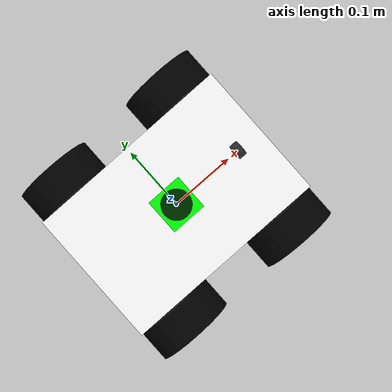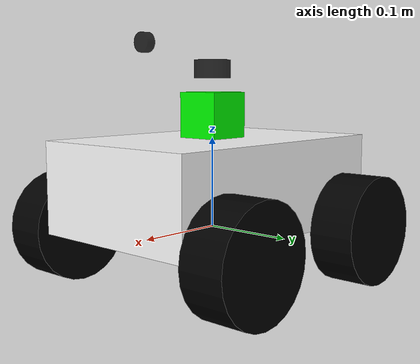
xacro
<?xml version="1.0"?>

<robot name="robot" xmlns:xacro="http://www.ros.org/wiki/xacro">

    <xacro:property name="length_wheel" value="0.05" />
    <xacro:property name="radius_wheel" value="0.06" />
    <xacro:property name="PI" value="3.1415926"/>
    <xacro:macro name="default_inertial" params="mass">
        <inertial>
            <mass value="${mass}" />
            <inertia ixx="0.01" ixy="0.0" ixz="0.0"
                    iyy="0.01" iyz="0.0" izz="0.01" />
        </inertial>
    </xacro:macro>

    <link name="base_link">
        <visual>
            <geometry>
                <box size="0.2 .3 .1"/>
            </geometry>
            <origin rpy="0 0 ${PI/2}" xyz="0 0 0.05"/>
            <material name="white">
                <color rgba="1 1 1 1"/>
            </material>
        </visual>
        <collision>
            <geometry>
                <box size="0.2 .3 0.1"/>
            </geometry>
        </collision>
        <xacro:default_inertial mass="2.2"/>
    </link>

    <link name="wheel_1">
        <visual>
            <geometry>
                <cylinder length="${length_wheel}" radius="${radius_wheel}"/>
            </geometry>
            <origin rpy="0 0 0" xyz="0 0 0"/>
            <material name="black">
                <color rgba="0 0 0 1"/>
            </material>
        </visual>
        <collision>
            <geometry>
                <cylinder length="${length_wheel}" radius="${radius_wheel}"/>
            </geometry>
        </collision>
        <mu1>0.5</mu1>
        <mu2>0.5</mu2>
        <xacro:default_inertial mass="0.5"/>
    </link>

    <link name="wheel_2">
        <visual>
            <geometry>
                <cylinder length="${length_wheel}" radius="${radius_wheel}"/>
            </geometry>
            <origin rpy="0 0 0" xyz="0 0 0"/>
            <material name="black"/>
        </visual>
        <collision>
            <geometry>
                <cylinder length="${length_wheel}" radius="${radius_wheel}"/>
            </geometry>
        </collision>
        <mu1>0.5</mu1>
        <mu2>0.5</mu2>
        <xacro:default_inertial mass="0.5"/>
    </link>

    <link name="wheel_3">
        <visual>
            <geometry>
                <cylinder length="${length_wheel}" radius="${radius_wheel}"/>
            </geometry>
            <origin rpy="0 0 0" xyz="0 0 0"/>
            <material name="black"/>
        </visual>
        <collision>
            <geometry>
                <cylinder length="${length_wheel}" radius="${radius_wheel}"/>
            </geometry>
        </collision>
        <mu1>0.5</mu1>
        <mu2>0.5</mu2>
        <xacro:default_inertial mass="0.5"/>
    </link>

    <link name="wheel_4">
        <visual>
            <geometry>
                <cylinder length="${length_wheel}" radius="${radius_wheel}"/>
            </geometry>
            <origin rpy="0 0 0" xyz="0 0 0" />
            <material name="black"/>
        </visual>
        <collision>
            <geometry>
                <cylinder length="${length_wheel}" radius="${radius_wheel}"/>
            </geometry>
        </collision>
        <mu1>0.5</mu1>
        <mu2>0.5</mu2>
        <xacro:default_inertial mass="0.5"/>
    </link>

    <joint name="base_to_wheel1" type="continuous">
        <parent link="base_link"/>
        <child link="wheel_1"/>
        <origin rpy="${-PI/2} 0 0" xyz="0.1 0.13 0"/>
        <axis xyz="0 0 1" />
    </joint>

    <joint name="base_to_wheel2" type="continuous">
        <axis xyz="0 0 1" />
        <anchor xyz="0 0 0" />
        <limit effort="100" velocity="100" />
        <parent link="base_link"/>
        <child link="wheel_2"/>
        <origin rpy="${-PI/2} 0 0" xyz="-0.1 0.13 0"/>
    </joint>

    <joint name="base_to_wheel3" type="continuous">
        <parent link="base_link"/>
        <axis xyz="0 0 1" />
        <child link="wheel_3"/>
        <origin rpy="${-PI/2} 0 0" xyz="0.1 -0.13 0"/>
    </joint>

    <joint name="base_to_wheel4" type="continuous">
        <parent link="base_link"/>
        <axis xyz="0 0 1" />
        <child link="wheel_4"/>
        <origin rpy="${-PI/2} 0 0" xyz="-0.1 -0.13 0"/>
    </joint>

    <!-- IMU joint -->
    <joint name="imu_joint" type="fixed">
        <axis xyz="0 1 0" />
        <origin xyz="0 0 0.125" rpy="0 0 0"/>
        <parent link="base_link"/>
        <child link="imu_link"/>
    </joint>

    <!-- IMU -->
    <link name="imu_link">
        <collision>
            <origin xyz="0 0 0" rpy="0 0 0"/>
            <geometry>
                <box size="0.05 0.05 0.05"/>
            </geometry>
        </collision>

        <visual>
            <origin xyz="0 0 0" rpy="0 0 0"/>
            <geometry>
                <box size="0.05 0.05 0.05"/>
            </geometry>
            <material name="green">
                <color rgba="0 1 0 1"/>
            </material>
        </visual>

        <inertial>
            <mass value="1e-2" />
            <origin xyz="0 0 0" rpy="0 0 0"/>
            <inertia ixx="1e-6" ixy="0" ixz="0" iyy="1e-6" iyz="0" izz="1e-6" />
        </inertial>
    </link>

    <link name="base_footprint"/>
    <joint name="base_joint" type="fixed">
        <parent link="base_footprint"/>
        <child link="base_link"/>
        <origin xyz="0.0 0.0 0" rpy="0 0 0"/>
    </joint>

    <!-- gazebo插件设置相关 -->

    <gazebo reference="base_link">
        <material>Gazebo/Orange</material>
    </gazebo>

    <gazebo reference="wheel_1">
        <material>Gazebo/Red</material>
    </gazebo>

    <gazebo reference="wheel_2">
        <material>Gazebo/Black</material>
    </gazebo>

    <gazebo reference="wheel_3">
        <material>Gazebo/Red</material>
    </gazebo>

    <gazebo reference="wheel_4">
        <material>Gazebo/Black</material>
    </gazebo>

    <!-- Drive controller -->
    <gazebo>
        <plugin name="mecanum_controller" filename="libgazebo_ros_planar_move.so">
            <ros>
                <remapping>cmd_vel:=cmd_vel</remapping>
                <remapping>odom:=odom</remapping>
            </ros>

            <update_rate>100</update_rate>
            <publish_rate>100</publish_rate>

            <!-- 发布odom -->
            <robotBaseFrame>base_footprint</robotBaseFrame>
            <publish_odom>true</publish_odom>
            <publish_odom_tf>true</publish_odom_tf>

            <leftFrontJoint>base_to_wheel1</leftFrontJoint>
            <rightFrontJoint>base_to_wheel3</rightFrontJoint>
            <leftRearJoint>base_to_wheel2</leftRearJoint>
            <rightRearJoint>base_to_wheel4</rightRearJoint>
            <wheelSeparation>0.26</wheelSeparation>
            <wheelDiameter>0.12</wheelDiameter>
        </plugin>
    </gazebo>

    <!-- imu控制 -->
    <gazebo reference="imu_link">
        <material>Gazebo/Orange</material>
        <gravity>true</gravity>
        <sensor name="imu_sensor" type="imu">
            <always_on>true</always_on>
            <update_rate>100</update_rate>
            <visualize>true</visualize>
            <topic>__default_topic__</topic>
            <plugin filename="libgazebo_ros_imu_sensor.so" name="imu_plugin">
                <topicName>/imu</topicName>
                <bodyName>imu_link</bodyName>
                <updateRateHZ>100.0</updateRateHZ>
                <gaussianNoise>0.0</gaussianNoise>
                <xyzOffset>0 0 0</xyzOffset>
                <rpyOffset>0 0 0</rpyOffset>
                <frameName>imu_link</frameName>
                <serviceName>default_service</serviceName>
                <alwaysOn>true</alwaysOn>
                <maxAngularVelocity>100.0</maxAngularVelocity>
                <noiseDensity>0.0</noiseDensity>
                <randomWalk>0.0</randomWalk>
            </plugin>
        </sensor>
    </gazebo>

    <!-- Livox-Mid360  -->

    <!-- Livox-Avia -->

    <!-- Livox-Avia -->
    <joint name="laser_joint" type="fixed">
        <parent link="base_link" />
        <child link="laser_link" />
        <origin xyz="0 0 0.175" />
    </joint>
    <link name="laser_link">
      <visual>
        <origin xyz="0 0 0" rpy="0 0 0"/>
        <geometry>
            <cylinder length="0.02" radius="0.02"/>
        </geometry>
        <material name="black">
            <color rgba="0.0 0.0 0.0 0.8" />
        </material>
      </visual>
    </link>
    <gazebo reference="laser_link">
      <sensor name="laser_sensor" type="ray">
      <always_on>true</always_on>
      <visualize>false</visualize>
      <update_rate>10</update_rate>
      <pose>0 0 0 0 0 0</pose>
      <ray>
          <scan>
            <horizontal>
              <samples>360</samples>
              <resolution>1.000000</resolution>
              <min_angle>0.000000</min_angle>
              <max_angle>6.280000</max_angle>
            </horizontal>
          </scan>
          <range>
            <min>0.120000</min>
            <max>8</max>
            <resolution>0.015000</resolution>
          </range>
          <noise>
            <type>gaussian</type>
            <mean>0.0</mean>
            <stddev>0.01</stddev>
          </noise>
      </ray>
      <plugin name="laserscan" filename="libgazebo_ros_ray_sensor.so">
        <ros>
          <remapping>~/out:=scan</remapping>
        </ros>
        <output_type>sensor_msgs/LaserScan</output_type>
        <frame_name>laser_link</frame_name>
      </plugin>
      </sensor>
    </gazebo>

    <joint name="camera_joint" type="fixed">
        <parent link="base_link" />
        <child link="camera_link" />
        <origin xyz="0.1 0 0.2" />
    </joint>
    <link name="camera_link">
      <visual>
        <origin xyz="0 0 0" rpy="0 1.585 0"/>
        <material name="black">
            <color rgba="0.0 0.0 0.0 0.8" />
        </material>
        <geometry>
            <cylinder length="0.01" radius="0.01"/>
        </geometry>
      </visual>
    </link>
        <!-- camera -->
    <gazebo reference="camera_link">
        <sensor type="camera" name="camera1">
          <update_rate>30.0</update_rate>
          <camera name="head">
            <horizontal_fov>1.3962634</horizontal_fov>
            <image>
              <width>800</width>
              <height>800</height>
              <format>R8G8B8</format>
            </image>
            <clip>
              <near>0.02</near>
              <far>300</far>
            </clip>
            <noise>
              <type>gaussian</type>
              <mean>0.0</mean>
              <stddev>0.007</stddev>
            </noise>
          </camera>
          <plugin name="camera_controller" filename="libgazebo_ros_camera.so">
            <alwaysOn>true</alwaysOn>
            <updateRate>0.0</updateRate>
            <cameraName>/camera1</cameraName>
            <imageTopicName>image_raw</imageTopicName>
            <cameraInfoTopicName>camera_info</cameraInfoTopicName>
            <frameName>camera_link</frameName>
            <hackBaseline>0.07</hackBaseline>
            <distortionK1>0.0</distortionK1>
            <distortionK2>0.0</distortionK2>
            <distortionK3>0.0</distortionK3>
            <distortionT1>0.0</distortionT1>
            <distortionT2>0.0</distortionT2>
          </plugin>
        </sensor>
    </gazebo>

</robot>
